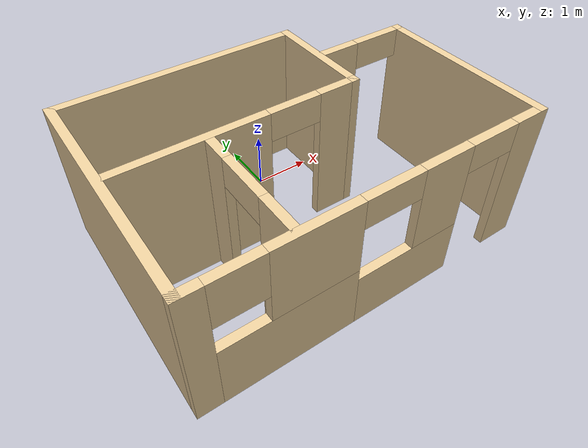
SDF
<?xml version='1.0'?>
<sdf version='1.6'>
  <model name='home'>
    <pose frame=''>-0.15 -1.38282 0 0 -0 0</pose>
    <link name='Wall_0'>
      <collision name='Wall_0_Collision'>
        <geometry>
          <box>
            <size>4.184 0.15 2.5</size>
          </box>
        </geometry>
        <pose frame=''>0 0 1.25 0 -0 0</pose>
      </collision>
      <visual name='Wall_0_Visual'>
        <pose frame=''>0 0 1.25 0 -0 0</pose>
        <geometry>
          <box>
            <size>4.184 0.15 2.5</size>
          </box>
        </geometry>
        <material>
          <script>
            <uri>file://media/materials/scripts/gazebo.material</uri>
            <name>Gazebo/Grey</name>
          </script>
          <ambient>0.921569 0.807843 0.615686 1</ambient>
        </material>
        <meta>
          <layer>0</layer>
        </meta>
      </visual>
      <pose frame=''>-2.95 -0.000177 0 0 -0 1.5708</pose>
    </link>
    <link name='Wall_1'>
      <pose frame=''>-0.87 2.01682 0 0 -0 0</pose>
      <visual name='Wall_1_Visual_0'>
        <pose frame=''>0 0 1.25 0 -0 0</pose>
        <geometry>
          <box>
            <size>4.31 0.15 2.5</size>
          </box>
        </geometry>
        <material>
          <script>
            <uri>file://media/materials/scripts/gazebo.material</uri>
            <name>Gazebo/Grey</name>
          </script>
          <ambient>0.921569 0.807843 0.615686 1</ambient>
        </material>
        <meta>
          <layer>0</layer>
        </meta>
      </visual>
      <collision name='Wall_1_Collision_0'>
        <geometry>
          <box>
            <size>4.31 0.15 2.5</size>
          </box>
        </geometry>
        <pose frame=''>0 0 1.25 0 -0 0</pose>
      </collision>
    </link>
    <link name='Wall_2'>
      <collision name='Wall_2_Collision'>
        <geometry>
          <box>
            <size>2.00271 0.15 2.5</size>
          </box>
        </geometry>
        <pose frame=''>0 0 1.25 0 -0 0</pose>
      </collision>
      <visual name='Wall_2_Visual'>
        <pose frame=''>0 0 1.25 0 -0 0</pose>
        <geometry>
          <box>
            <size>2.00271 0.15 2.5</size>
          </box>
        </geometry>
        <material>
          <script>
            <uri>file://media/materials/scripts/gazebo.material</uri>
            <name>Gazebo/Grey</name>
          </script>
          <ambient>0.921569 0.807843 0.615686 1</ambient>
        </material>
        <meta>
          <layer>0</layer>
        </meta>
      </visual>
      <pose frame=''>1.21 1.09082 0 0 -0 -1.5708</pose>
    </link>
    <link name='Wall_3'>
      <pose frame=''>-0.849886 0.164732 0 0 -0 -3.14155</pose>
      <visual name='Wall_3_Visual_0'>
        <pose frame=''>-1.75754 0 1.25 0 -0 0</pose>
        <geometry>
          <box>
            <size>0.754702 0.15 2.5</size>
          </box>
        </geometry>
        <material>
          <script>
            <uri>file://media/materials/scripts/gazebo.material</uri>
            <name>Gazebo/Grey</name>
          </script>
          <ambient>0.921569 0.807843 0.615686 1</ambient>
        </material>
        <meta>
          <layer>0</layer>
        </meta>
      </visual>
      <collision name='Wall_3_Collision_0'>
        <geometry>
          <box>
            <size>0.754702 0.15 2.5</size>
          </box>
        </geometry>
        <pose frame=''>-1.75754 0 1.25 0 -0 0</pose>
      </collision>
      <visual name='Wall_3_Visual_1'>
        <pose frame=''>0.827351 0 1.25 0 -0 0</pose>
        <geometry>
          <box>
            <size>2.61507 0.15 2.5</size>
          </box>
        </geometry>
        <material>
          <script>
            <uri>file://media/materials/scripts/gazebo.material</uri>
            <name>Gazebo/Grey</name>
          </script>
          <ambient>0.921569 0.807843 0.615686 1</ambient>
        </material>
        <meta>
          <layer>0</layer>
        </meta>
      </visual>
      <collision name='Wall_3_Collision_1'>
        <geometry>
          <box>
            <size>2.61507 0.15 2.5</size>
          </box>
        </geometry>
        <pose frame=''>0.827351 0 1.25 0 -0 0</pose>
      </collision>
      <visual name='Wall_3_Visual_2'>
        <pose frame=''>-0.930184 0 2.25 0 -0 0</pose>
        <geometry>
          <box>
            <size>0.9 0.15 0.5</size>
          </box>
        </geometry>
        <material>
          <script>
            <uri>file://media/materials/scripts/gazebo.material</uri>
            <name>Gazebo/Grey</name>
          </script>
          <ambient>0.921569 0.807843 0.615686 1</ambient>
        </material>
        <meta>
          <layer>0</layer>
        </meta>
      </visual>
      <collision name='Wall_3_Collision_2'>
        <geometry>
          <box>
            <size>0.9 0.15 0.5</size>
          </box>
        </geometry>
        <pose frame=''>-0.930184 0 2.25 0 -0 0</pose>
      </collision>
    </link>
    <link name='Wall_5'>
      <pose frame=''>-0 -2.01718 0 0 -0 0</pose>
      <visual name='Wall_5_Visual_0'>
        <pose frame=''>-2.81883 0 1.25 0 -0 0</pose>
        <geometry>
          <box>
            <size>0.412348 0.15 2.5</size>
          </box>
        </geometry>
        <material>
          <script>
            <uri>file://media/materials/scripts/gazebo.material</uri>
            <name>Gazebo/Grey</name>
          </script>
          <ambient>0.921569 0.807843 0.615686 1</ambient>
        </material>
        <meta>
          <layer>0</layer>
        </meta>
      </visual>
      <collision name='Wall_5_Collision_0'>
        <geometry>
          <box>
            <size>0.412348 0.15 2.5</size>
          </box>
        </geometry>
        <pose frame=''>-2.81883 0 1.25 0 -0 0</pose>
      </collision>
      <visual name='Wall_5_Visual_1'>
        <pose frame=''>2.70287 0 1.25 0 -0 0</pose>
        <geometry>
          <box>
            <size>0.644256 0.15 2.5</size>
          </box>
        </geometry>
        <material>
          <script>
            <uri>file://media/materials/scripts/gazebo.material</uri>
            <name>Gazebo/Grey</name>
          </script>
          <ambient>0.921569 0.807843 0.615686 1</ambient>
        </material>
        <meta>
          <layer>0</layer>
        </meta>
      </visual>
      <collision name='Wall_5_Collision_1'>
        <geometry>
          <box>
            <size>0.644256 0.15 2.5</size>
          </box>
        </geometry>
        <pose frame=''>2.70287 0 1.25 0 -0 0</pose>
      </collision>
      <visual name='Wall_5_Visual_2'>
        <pose frame=''>-1.50612 0 0.6 0 -0 0</pose>
        <geometry>
          <box>
            <size>2.21306 0.15 1.2</size>
          </box>
        </geometry>
        <material>
          <script>
            <uri>file://media/materials/scripts/gazebo.material</uri>
            <name>Gazebo/Grey</name>
          </script>
          <ambient>0.921569 0.807843 0.615686 1</ambient>
        </material>
        <meta>
          <layer>0</layer>
        </meta>
      </visual>
      <collision name='Wall_5_Collision_2'>
        <geometry>
          <box>
            <size>2.21306 0.15 1.2</size>
          </box>
        </geometry>
        <pose frame=''>-1.50612 0 0.6 0 -0 0</pose>
      </collision>
      <visual name='Wall_5_Visual_3'>
        <pose frame=''>0.540576 0 0.5 0 -0 0</pose>
        <geometry>
          <box>
            <size>1.88034 0.15 1</size>
          </box>
        </geometry>
        <material>
          <script>
            <uri>file://media/materials/scripts/gazebo.material</uri>
            <name>Gazebo/Grey</name>
          </script>
          <ambient>0.921569 0.807843 0.615686 1</ambient>
        </material>
        <meta>
          <layer>0</layer>
        </meta>
      </visual>
      <collision name='Wall_5_Collision_3'>
        <geometry>
          <box>
            <size>1.88034 0.15 1</size>
          </box>
        </geometry>
        <pose frame=''>0.540576 0 0.5 0 -0 0</pose>
      </collision>
      <visual name='Wall_5_Visual_4'>
        <pose frame=''>1.04058 0 1.75 0 -0 0</pose>
        <geometry>
          <box>
            <size>0.880335 0.15 1.5</size>
          </box>
        </geometry>
        <material>
          <script>
            <uri>file://media/materials/scripts/gazebo.material</uri>
            <name>Gazebo/Grey</name>
          </script>
          <ambient>0.921569 0.807843 0.615686 1</ambient>
        </material>
        <meta>
          <layer>0</layer>
        </meta>
      </visual>
      <collision name='Wall_5_Collision_4'>
        <geometry>
          <box>
            <size>0.880335 0.15 1.5</size>
          </box>
        </geometry>
        <pose frame=''>1.04058 0 1.75 0 -0 0</pose>
      </collision>
      <visual name='Wall_5_Visual_5'>
        <pose frame=''>-1.10612 0 1.85 0 -0 0</pose>
        <geometry>
          <box>
            <size>1.41306 0.15 1.3</size>
          </box>
        </geometry>
        <material>
          <script>
            <uri>file://media/materials/scripts/gazebo.material</uri>
            <name>Gazebo/Grey</name>
          </script>
          <ambient>0.921569 0.807843 0.615686 1</ambient>
        </material>
        <meta>
          <layer>0</layer>
        </meta>
      </visual>
      <collision name='Wall_5_Collision_5'>
        <geometry>
          <box>
            <size>1.41306 0.15 1.3</size>
          </box>
        </geometry>
        <pose frame=''>-1.10612 0 1.85 0 -0 0</pose>
      </collision>
      <visual name='Wall_5_Visual_6'>
        <pose frame=''>-2.21265 0 2.1 0 -0 0</pose>
        <geometry>
          <box>
            <size>0.8 0.15 0.8</size>
          </box>
        </geometry>
        <material>
          <script>
            <uri>file://media/materials/scripts/gazebo.material</uri>
            <name>Gazebo/Grey</name>
          </script>
          <ambient>0.921569 0.807843 0.615686 1</ambient>
        </material>
        <meta>
          <layer>0</layer>
        </meta>
      </visual>
      <collision name='Wall_5_Collision_6'>
        <geometry>
          <box>
            <size>0.8 0.15 0.8</size>
          </box>
        </geometry>
        <pose frame=''>-2.21265 0 2.1 0 -0 0</pose>
      </collision>
      <visual name='Wall_5_Visual_7'>
        <pose frame=''>1.93074 0 2.25 0 -0 0</pose>
        <geometry>
          <box>
            <size>0.9 0.15 0.5</size>
          </box>
        </geometry>
        <material>
          <script>
            <uri>file://media/materials/scripts/gazebo.material</uri>
            <name>Gazebo/Grey</name>
          </script>
          <ambient>0.921569 0.807843 0.615686 1</ambient>
        </material>
        <meta>
          <layer>0</layer>
        </meta>
      </visual>
      <collision name='Wall_5_Collision_7'>
        <geometry>
          <box>
            <size>0.9 0.15 0.5</size>
          </box>
        </geometry>
        <pose frame=''>1.93074 0 2.25 0 -0 0</pose>
      </collision>
      <visual name='Wall_5_Visual_8'>
        <pose frame=''>0.100409 0 2.25 0 -0 0</pose>
        <geometry>
          <box>
            <size>1 0.15 0.5</size>
          </box>
        </geometry>
        <material>
          <script>
            <uri>file://media/materials/scripts/gazebo.material</uri>
            <name>Gazebo/Grey</name>
          </script>
          <ambient>0.921569 0.807843 0.615686 1</ambient>
        </material>
        <meta>
          <layer>0</layer>
        </meta>
      </visual>
      <collision name='Wall_5_Collision_8'>
        <geometry>
          <box>
            <size>1 0.15 0.5</size>
          </box>
        </geometry>
        <pose frame=''>0.100409 0 2.25 0 -0 0</pose>
      </collision>
    </link>
    <link name='Wall_6'>
      <collision name='Wall_6_Collision'>
        <geometry>
          <box>
            <size>3.23 0.15 2.5</size>
          </box>
        </geometry>
        <pose frame=''>0 0 1.25 0 -0 0</pose>
      </collision>
      <visual name='Wall_6_Visual'>
        <pose frame=''>0 0 1.25 0 -0 0</pose>
        <geometry>
          <box>
            <size>3.23 0.15 2.5</size>
          </box>
        </geometry>
        <material>
          <script>
            <uri>file://media/materials/scripts/gazebo.material</uri>
            <name>Gazebo/Grey</name>
          </script>
          <ambient>0.921569 0.807843 0.615686 1</ambient>
        </material>
        <meta>
          <layer>0</layer>
        </meta>
      </visual>
      <pose frame=''>2.95 -0.477177 0 0 -0 1.5708</pose>
    </link>
    <link name='Wall_7'>
      <pose frame=''>2.145 1.06282 0 0 -0 3.14159</pose>
      <visual name='Wall_7_Visual_0'>
        <pose frame=''>-0.809267 0 1.25 0 -0 0</pose>
        <geometry>
          <box>
            <size>0.141369 0.15 2.5</size>
          </box>
        </geometry>
        <material>
          <script>
            <uri>file://media/materials/scripts/gazebo.material</uri>
            <name>Gazebo/Grey</name>
          </script>
          <ambient>0.921569 0.807843 0.615686 1</ambient>
        </material>
        <meta>
          <layer>0</layer>
        </meta>
      </visual>
      <collision name='Wall_7_Collision_0'>
        <geometry>
          <box>
            <size>0.141369 0.15 2.5</size>
          </box>
        </geometry>
        <pose frame=''>-0.809267 0 1.25 0 -0 0</pose>
      </collision>
      <visual name='Wall_7_Visual_1'>
        <pose frame=''>0.520685 0 1.25 0 -0 0</pose>
        <geometry>
          <box>
            <size>0.718535 0.15 2.5</size>
          </box>
        </geometry>
        <material>
          <script>
            <uri>file://media/materials/scripts/gazebo.material</uri>
            <name>Gazebo/Grey</name>
          </script>
          <ambient>0.921569 0.807843 0.615686 1</ambient>
        </material>
        <meta>
          <layer>0</layer>
        </meta>
      </visual>
      <collision name='Wall_7_Collision_1'>
        <geometry>
          <box>
            <size>0.718535 0.15 2.5</size>
          </box>
        </geometry>
        <pose frame=''>0.520685 0 1.25 0 -0 0</pose>
      </collision>
      <visual name='Wall_7_Visual_2'>
        <pose frame=''>-0.288583 0 2.25 0 -0 0</pose>
        <geometry>
          <box>
            <size>0.9 0.15 0.5</size>
          </box>
        </geometry>
        <material>
          <script>
            <uri>file://media/materials/scripts/gazebo.material</uri>
            <name>Gazebo/Grey</name>
          </script>
          <ambient>0.921569 0.807843 0.615686 1</ambient>
        </material>
        <meta>
          <layer>0</layer>
        </meta>
      </visual>
      <collision name='Wall_7_Collision_2'>
        <geometry>
          <box>
            <size>0.9 0.15 0.5</size>
          </box>
        </geometry>
        <pose frame=''>-0.288583 0 2.25 0 -0 0</pose>
      </collision>
    </link>
    <link name='Wall_9'>
      <pose frame=''>-1.36784 -0.947063 0 0 -0 1.5708</pose>
      <visual name='Wall_9_Visual_0'>
        <pose frame=''>-0.724985 0 1.25 0 -0 0</pose>
        <geometry>
          <box>
            <size>0.800029 0.15 2.5</size>
          </box>
        </geometry>
        <material>
          <script>
            <uri>file://media/materials/scripts/gazebo.material</uri>
            <name>Gazebo/Grey</name>
          </script>
          <ambient>0.921569 0.807843 0.615686 1</ambient>
        </material>
        <meta>
          <layer>0</layer>
        </meta>
      </visual>
      <collision name='Wall_9_Collision_0'>
        <geometry>
          <box>
            <size>0.800029 0.15 2.5</size>
          </box>
        </geometry>
        <pose frame=''>-0.724985 0 1.25 0 -0 0</pose>
      </collision>
      <visual name='Wall_9_Visual_1'>
        <pose frame=''>0.850015 0 1.25 0 -0 0</pose>
        <geometry>
          <box>
            <size>0.549971 0.15 2.5</size>
          </box>
        </geometry>
        <material>
          <script>
            <uri>file://media/materials/scripts/gazebo.material</uri>
            <name>Gazebo/Grey</name>
          </script>
          <ambient>0.921569 0.807843 0.615686 1</ambient>
        </material>
        <meta>
          <layer>0</layer>
        </meta>
      </visual>
      <collision name='Wall_9_Collision_1'>
        <geometry>
          <box>
            <size>0.549971 0.15 2.5</size>
          </box>
        </geometry>
        <pose frame=''>0.850015 0 1.25 0 -0 0</pose>
      </collision>
      <visual name='Wall_9_Visual_2'>
        <pose frame=''>0.125029 0 2.25 0 -0 0</pose>
        <geometry>
          <box>
            <size>0.9 0.15 0.5</size>
          </box>
        </geometry>
        <material>
          <script>
            <uri>file://media/materials/scripts/gazebo.material</uri>
            <name>Gazebo/Grey</name>
          </script>
          <ambient>0.921569 0.807843 0.615686 1</ambient>
        </material>
        <meta>
          <layer>0</layer>
        </meta>
      </visual>
      <collision name='Wall_9_Collision_2'>
        <geometry>
          <box>
            <size>0.9 0.15 0.5</size>
          </box>
        </geometry>
        <pose frame=''>0.125029 0 2.25 0 -0 0</pose>
      </collision>
    </link>
    <static>1</static>
  </model>
</sdf>
